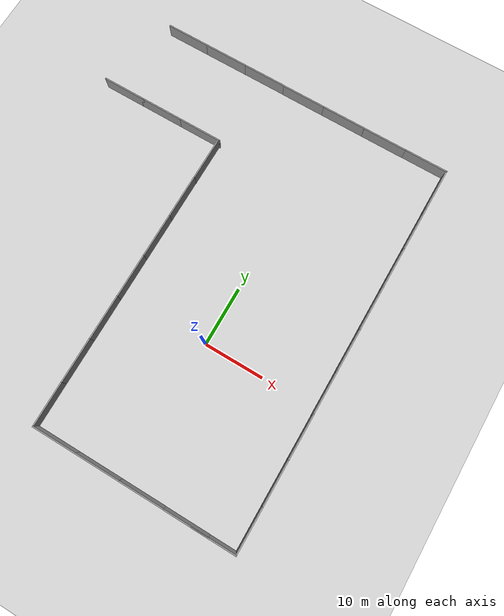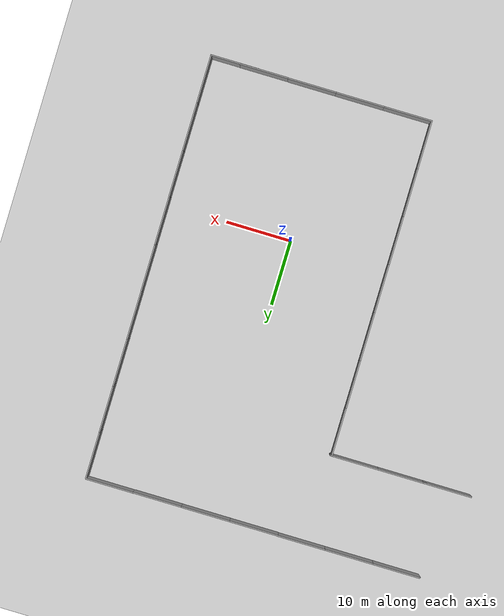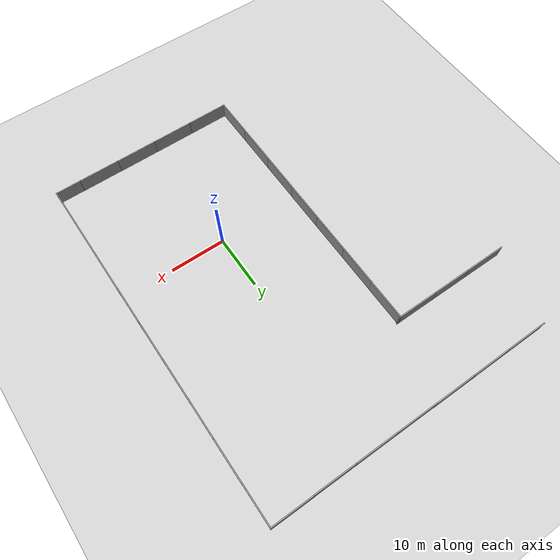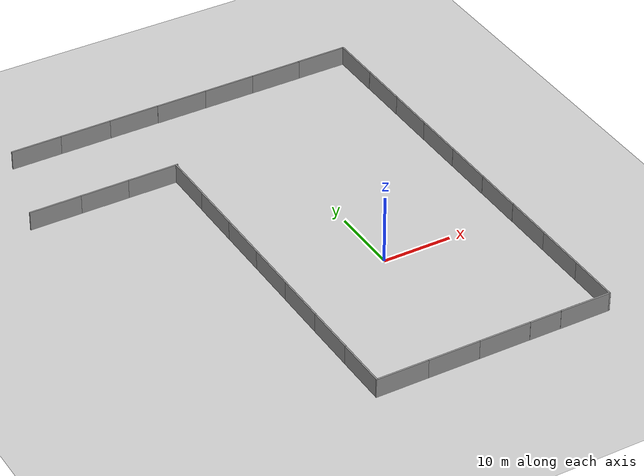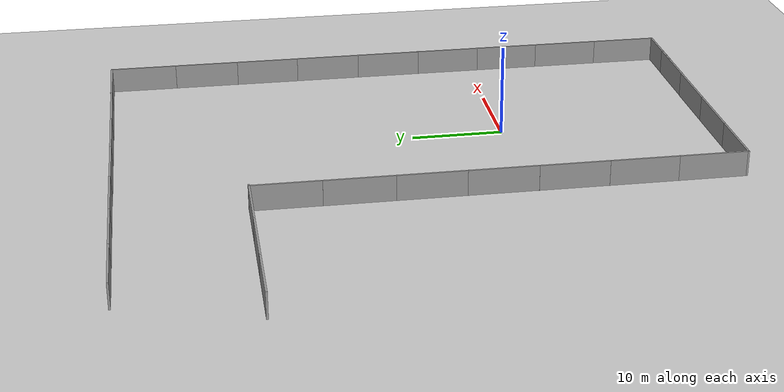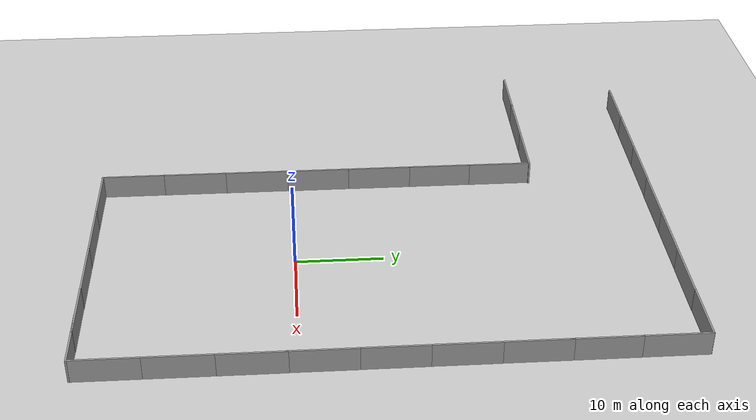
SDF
<sdf version="1.5">
 <world name="default">
  <light name="sun" type="directional">
   <pose>0 0 10 0 -0 0</pose>
   <diffuse>0.8 0.8 0.8 1</diffuse>
   <specular>0.2 0.2 0.2 1</specular>
   <attenuation>
    <range>1000</range>
    <constant>0.9</constant>
    <linear>0.01</linear>
    <quadratic>0.001</quadratic>
   </attenuation>
   <direction>0.5 0.1 -0.9</direction>
  </light>
  <model name="ground_plane">
   <static>1</static>
   <link name="link">
    <collision name="collision">
     <geometry><plane><normal>0 0 1</normal><size>100 100</size></plane></geometry>
     <surface><friction><ode><mu>100</mu><mu2>50</mu2></ode></friction></surface>
    </collision>
    <visual name="visual">
     <cast_shadows>0</cast_shadows>
     <geometry><plane><normal>0 0 1</normal><size>100 100</size></plane></geometry>
     <material>
      <script><uri>file://media/materials/scripts/gazebo.material</uri><name>Gazebo/Grey</name></script>
     </material>
    </visual>
    <velocity_decay><linear>0</linear><angular>0</angular></velocity_decay>
   </link>
  </model>
  <physics name="default_physics" default="0" type="ode">
   <max_step_size>0.001</max_step_size>
   <real_time_factor>1</real_time_factor>
   <real_time_update_rate>1000</real_time_update_rate>
   <gravity>0 0 -9.8</gravity>
   <magnetic_field>5.5645e-06 2.28758e-05 -4.23884e-05</magnetic_field>
  </physics>
  <scene>
   <ambient>0 0 0 1</ambient>
   <shadows>1</shadows>
   <grid>0</grid>
   <background>0.7 0.7 0.7 1</background>
  </scene>
  <spherical_coordinates>
   <surface_model>EARTH_WGS84</surface_model>
   <latitude_deg>0</latitude_deg>
   <longitude_deg>0</longitude_deg>
   <elevation>0</elevation>
   <heading_deg>0</heading_deg>
  </spherical_coordinates>
  <model name="grey_wall">
   <static>1</static>
   <link name="link">
    <pose>0 0 1.4 0 -0 0</pose>
    <collision name="collision"><geometry><box><size>7.5 0.2 2.8</size></box></geometry></collision>
    <visual name="visual">
     <cast_shadows>0</cast_shadows>
     <geometry><box><size>7.5 0.2 2.8</size></box></geometry>
     <material>
      <script>
       <uri>model://grey_wall/materials/scripts</uri>
       <uri>model://grey_wall/materials/textures</uri>
       <name>vrc/grey_wall</name>
      </script>
     </material>
    </visual>
   </link>
   <pose>10.9383 -23.0355 0 0 -0 0</pose>
  </model>
  <model name="grey_wall_clone">
   <static>1</static>
   <link name="link">
    <pose>0 0 1.4 0 -0 0</pose>
    <collision name="collision"><geometry><box><size>7.5 0.2 2.8</size></box></geometry></collision>
    <visual name="visual">
     <cast_shadows>0</cast_shadows>
     <geometry><box><size>7.5 0.2 2.8</size></box></geometry>
     <material>
      <script>
       <uri>model://grey_wall/materials/scripts</uri>
       <uri>model://grey_wall/materials/textures</uri>
       <name>vrc/grey_wall</name>
      </script>
     </material>
    </visual>
   </link>
   <pose>3.47515 -23.0089 0 0 -0 0</pose>
  </model>
  <model name="grey_wall_clone_0">
   <static>1</static>
   <link name="link">
    <pose>0 0 1.4 0 -0 0</pose>
    <collision name="collision"><geometry><box><size>7.5 0.2 2.8</size></box></geometry></collision>
    <visual name="visual">
     <cast_shadows>0</cast_shadows>
     <geometry><box><size>7.5 0.2 2.8</size></box></geometry>
     <material>
      <script>
       <uri>model://grey_wall/materials/scripts</uri>
       <uri>model://grey_wall/materials/textures</uri>
       <name>vrc/grey_wall</name>
      </script>
     </material>
    </visual>
   </link>
   <pose>-4 -23 0 0 -0 0</pose>
  </model>
  <model name="grey_wall_clone_1">
   <static>1</static>
   <link name="link">
    <pose>0 0 1.4 0 -0 0</pose>
    <collision name="collision"><geometry><box><size>7.5 0.2 2.8</size></box></geometry></collision>
    <visual name="visual">
     <cast_shadows>0</cast_shadows>
     <geometry><box><size>7.5 0.2 2.8</size></box></geometry>
     <material>
      <script>
       <uri>model://grey_wall/materials/scripts</uri>
       <uri>model://grey_wall/materials/textures</uri>
       <name>vrc/grey_wall</name>
      </script>
     </material>
    </visual>
   </link>
   <pose>-11.4641 -23 0 0 -0 0</pose>
  </model>
  <model name="grey_wall_clone_2">
   <static>1</static>
   <link name="link">
    <pose>0 0 1.4 0 -0 0</pose>
    <collision name="collision"><geometry><box><size>7.5 0.2 2.8</size></box></geometry></collision>
    <visual name="visual">
     <cast_shadows>0</cast_shadows>
     <geometry><box><size>7.5 0.2 2.8</size></box></geometry>
     <material>
      <script>
       <uri>model://grey_wall/materials/scripts</uri>
       <uri>model://grey_wall/materials/textures</uri>
       <name>vrc/grey_wall</name>
      </script>
     </material>
    </visual>
   </link>
   <pose>-15.1169 -19.3226 0 0 0 -1.57</pose>
  </model>
  <model name="grey_wall_clone_2_clone">
   <static>1</static>
   <link name="link">
    <pose>0 0 1.4 0 -0 0</pose>
    <collision name="collision"><geometry><box><size>7.5 0.2 2.8</size></box></geometry></collision>
    <visual name="visual">
     <cast_shadows>0</cast_shadows>
     <geometry><box><size>7.5 0.2 2.8</size></box></geometry>
     <material>
      <script>
       <uri>model://grey_wall/materials/scripts</uri>
       <uri>model://grey_wall/materials/textures</uri>
       <name>vrc/grey_wall</name>
      </script>
     </material>
    </visual>
   </link>
   <pose>-15.109 -11.9177 0 0 -0 1.57</pose>
  </model>
  <model name="grey_wall_clone_2_clone_0">
   <static>1</static>
   <link name="link">
    <pose>0 0 1.4 0 -0 0</pose>
    <collision name="collision"><geometry><box><size>7.5 0.2 2.8</size></box></geometry></collision>
    <visual name="visual">
     <cast_shadows>0</cast_shadows>
     <geometry><box><size>7.5 0.2 2.8</size></box></geometry>
     <material>
      <script>
       <uri>model://grey_wall/materials/scripts</uri>
       <uri>model://grey_wall/materials/textures</uri>
       <name>vrc/grey_wall</name>
      </script>
     </material>
    </visual>
   </link>
   <pose>-15.0927 -4.4464 0 0 -0 1.57</pose>
  </model>
  <model name="grey_wall_clone_2_clone_1">
   <static>1</static>
   <link name="link">
    <pose>0 0 1.4 0 -0 0</pose>
    <collision name="collision"><geometry><box><size>7.5 0.2 2.8</size></box></geometry></collision>
    <visual name="visual">
     <cast_shadows>0</cast_shadows>
     <geometry><box><size>7.5 0.2 2.8</size></box></geometry>
     <material>
      <script>
       <uri>model://grey_wall/materials/scripts</uri>
       <uri>model://grey_wall/materials/textures</uri>
       <name>vrc/grey_wall</name>
      </script>
     </material>
    </visual>
   </link>
   <pose>-15.0696 3.02866 0 0 -0 1.57</pose>
  </model>
  <model name="grey_wall_clone_2_clone_2">
   <static>1</static>
   <link name="link">
    <pose>0 0 1.4 0 -0 0</pose>
    <collision name="collision"><geometry><box><size>7.5 0.2 2.8</size></box></geometry></collision>
    <visual name="visual">
     <cast_shadows>0</cast_shadows>
     <geometry><box><size>7.5 0.2 2.8</size></box></geometry>
     <material>
      <script>
       <uri>model://grey_wall/materials/scripts</uri>
       <uri>model://grey_wall/materials/textures</uri>
       <name>vrc/grey_wall</name>
      </script>
     </material>
    </visual>
   </link>
   <pose>-15.0604 10.4694 0 0 -0 1.57</pose>
  </model>
  <model name="grey_wall_clone_2_clone_3">
   <static>1</static>
   <link name="link">
    <pose>0 0 1.4 0 -0 0</pose>
    <collision name="collision"><geometry><box><size>7.5 0.2 2.8</size></box></geometry></collision>
    <visual name="visual">
     <cast_shadows>0</cast_shadows>
     <geometry><box><size>7.5 0.2 2.8</size></box></geometry>
     <material>
      <script>
       <uri>model://grey_wall/materials/scripts</uri>
       <uri>model://grey_wall/materials/textures</uri>
       <name>vrc/grey_wall</name>
      </script>
     </material>
    </visual>
   </link>
   <pose>-15.0555 17.8885 0 0 -0 1.57</pose>
  </model>
  <model name="grey_wall_clone_2_clone_4">
   <static>1</static>
   <link name="link">
    <pose>0 0 1.4 0 -0 0</pose>
    <collision name="collision"><geometry><box><size>7.5 0.2 2.8</size></box></geometry></collision>
    <visual name="visual">
     <cast_shadows>0</cast_shadows>
     <geometry><box><size>7.5 0.2 2.8</size></box></geometry>
     <material>
      <script>
       <uri>model://grey_wall/materials/scripts</uri>
       <uri>model://grey_wall/materials/textures</uri>
       <name>vrc/grey_wall</name>
      </script>
     </material>
    </visual>
   </link>
   <pose>-15.0291 25.3509 0 0 -0 1.57</pose>
  </model>
  <model name="grey_wall_0">
   <static>1</static>
   <link name="link">
    <pose>0 0 1.4 0 -0 0</pose>
    <collision name="collision"><geometry><box><size>7.5 0.2 2.8</size></box></geometry></collision>
    <visual name="visual">
     <cast_shadows>0</cast_shadows>
     <geometry><box><size>7.5 0.2 2.8</size></box></geometry>
     <material>
      <script>
       <uri>model://grey_wall/materials/scripts</uri>
       <uri>model://grey_wall/materials/textures</uri>
       <name>vrc/grey_wall</name>
      </script>
     </material>
    </visual>
   </link>
   <pose>19.1679 -19.4083 0 0 -0 1.57</pose>
  </model>
  <model name="grey_wall_1">
   <static>1</static>
   <link name="link">
    <pose>0 0 1.4 0 -0 0</pose>
    <collision name="collision"><geometry><box><size>7.5 0.2 2.8</size></box></geometry></collision>
    <visual name="visual">
     <cast_shadows>0</cast_shadows>
     <geometry><box><size>7.5 0.2 2.8</size></box></geometry>
     <material>
      <script>
       <uri>model://grey_wall/materials/scripts</uri>
       <uri>model://grey_wall/materials/textures</uri>
       <name>vrc/grey_wall</name>
      </script>
     </material>
    </visual>
   </link>
   <pose>15.5303 -23.055 0 0 -0 0</pose>
  </model>
  <model name="grey_wall_0_clone">
   <static>1</static>
   <link name="link">
    <pose>0 0 1.4 0 -0 0</pose>
    <collision name="collision"><geometry><box><size>7.5 0.2 2.8</size></box></geometry></collision>
    <visual name="visual">
     <cast_shadows>0</cast_shadows>
     <geometry><box><size>7.5 0.2 2.8</size></box></geometry>
     <material>
      <script>
       <uri>model://grey_wall/materials/scripts</uri>
       <uri>model://grey_wall/materials/textures</uri>
       <name>vrc/grey_wall</name>
      </script>
     </material>
    </visual>
   </link>
   <pose>19.1723 -11.9797 0 0 -0 1.57</pose>
  </model>
  <model name="grey_wall_0_clone_0">
   <static>1</static>
   <link name="link">
    <pose>0 0 1.4 0 -0 0</pose>
    <collision name="collision"><geometry><box><size>7.5 0.2 2.8</size></box></geometry></collision>
    <visual name="visual">
     <cast_shadows>0</cast_shadows>
     <geometry><box><size>7.5 0.2 2.8</size></box></geometry>
     <material>
      <script>
       <uri>model://grey_wall/materials/scripts</uri>
       <uri>model://grey_wall/materials/textures</uri>
       <name>vrc/grey_wall</name>
      </script>
     </material>
    </visual>
   </link>
   <pose>19.176 -4.57768 0 0 -0 1.57</pose>
  </model>
  <model name="grey_wall_0_clone_1">
   <static>1</static>
   <link name="link">
    <pose>0 0 1.4 0 -0 0</pose>
    <collision name="collision"><geometry><box><size>7.5 0.2 2.8</size></box></geometry></collision>
    <visual name="visual">
     <cast_shadows>0</cast_shadows>
     <geometry><box><size>7.5 0.2 2.8</size></box></geometry>
     <material>
      <script>
       <uri>model://grey_wall/materials/scripts</uri>
       <uri>model://grey_wall/materials/textures</uri>
       <name>vrc/grey_wall</name>
      </script>
     </material>
    </visual>
   </link>
   <pose>19.1569 2.66623 0 0 -0 1.57</pose>
  </model>
  <model name="grey_wall_0_clone_2">
   <static>1</static>
   <link name="link">
    <pose>0 0 1.4 0 -0 0</pose>
    <collision name="collision"><geometry><box><size>7.5 0.2 2.8</size></box></geometry></collision>
    <visual name="visual">
     <cast_shadows>0</cast_shadows>
     <geometry><box><size>7.5 0.2 2.8</size></box></geometry>
     <material>
      <script>
       <uri>model://grey_wall/materials/scripts</uri>
       <uri>model://grey_wall/materials/textures</uri>
       <name>vrc/grey_wall</name>
      </script>
     </material>
    </visual>
   </link>
   <pose>19.145 9.93324 0 0 -0 1.57</pose>
  </model>
  <model name="grey_wall_0_clone_3">
   <static>1</static>
   <link name="link">
    <pose>0 0 1.4 0 -0 0</pose>
    <collision name="collision"><geometry><box><size>7.5 0.2 2.8</size></box></geometry></collision>
    <visual name="visual">
     <cast_shadows>0</cast_shadows>
     <geometry><box><size>7.5 0.2 2.8</size></box></geometry>
     <material>
      <script>
       <uri>model://grey_wall/materials/scripts</uri>
       <uri>model://grey_wall/materials/textures</uri>
       <name>vrc/grey_wall</name>
      </script>
     </material>
    </visual>
   </link>
   <pose>19.1332 17.2935 0 0 -0 1.57</pose>
  </model>
  <model name="grey_wall_0_clone_4">
   <static>1</static>
   <link name="link">
    <pose>0 0 1.4 0 -0 0</pose>
    <collision name="collision"><geometry><box><size>7.5 0.2 2.8</size></box></geometry></collision>
    <visual name="visual">
     <cast_shadows>0</cast_shadows>
     <geometry><box><size>7.5 0.2 2.8</size></box></geometry>
     <material>
      <script>
       <uri>model://grey_wall/materials/scripts</uri>
       <uri>model://grey_wall/materials/textures</uri>
       <name>vrc/grey_wall</name>
      </script>
     </material>
    </visual>
   </link>
   <pose>19.1258 24.6145 0 0 -0 1.57</pose>
  </model>
  <model name="grey_wall_0_clone_5">
   <static>1</static>
   <link name="link">
    <pose>0 0 1.4 0 -0 0</pose>
    <collision name="collision"><geometry><box><size>7.5 0.2 2.8</size></box></geometry></collision>
    <visual name="visual">
     <cast_shadows>0</cast_shadows>
     <geometry><box><size>7.5 0.2 2.8</size></box></geometry>
     <material>
      <script>
       <uri>model://grey_wall/materials/scripts</uri>
       <uri>model://grey_wall/materials/textures</uri>
       <name>vrc/grey_wall</name>
      </script>
     </material>
    </visual>
   </link>
   <pose>19.1287 31.7535 0 0 -0 1.57</pose>
  </model>
  <model name="grey_wall_0_clone_6">
   <static>1</static>
   <link name="link">
    <pose>0 0 1.4 0 -0 0</pose>
    <collision name="collision"><geometry><box><size>7.5 0.2 2.8</size></box></geometry></collision>
    <visual name="visual">
     <cast_shadows>0</cast_shadows>
     <geometry><box><size>7.5 0.2 2.8</size></box></geometry>
     <material>
      <script>
       <uri>model://grey_wall/materials/scripts</uri>
       <uri>model://grey_wall/materials/textures</uri>
       <name>vrc/grey_wall</name>
      </script>
     </material>
    </visual>
   </link>
   <pose>19.118 39.0094 0 0 -0 1.57</pose>
  </model>
  <model name="grey_wall_2">
   <static>1</static>
   <link name="link">
    <pose>0 0 1.4 0 -0 0</pose>
    <collision name="collision"><geometry><box><size>7.5 0.2 2.8</size></box></geometry></collision>
    <visual name="visual">
     <cast_shadows>0</cast_shadows>
     <geometry><box><size>7.5 0.2 2.8</size></box></geometry>
     <material>
      <script>
       <uri>model://grey_wall/materials/scripts</uri>
       <uri>model://grey_wall/materials/textures</uri>
       <name>vrc/grey_wall</name>
      </script>
     </material>
    </visual>
   </link>
   <pose>15.4645 42.7006 0 0 -0 0</pose>
  </model>
  <model name="grey_wall_2_clone">
   <static>1</static>
   <link name="link">
    <pose>0 0 1.4 0 -0 0</pose>
    <collision name="collision"><geometry><box><size>7.5 0.2 2.8</size></box></geometry></collision>
    <visual name="visual">
     <cast_shadows>0</cast_shadows>
     <geometry><box><size>7.5 0.2 2.8</size></box></geometry>
     <material>
      <script>
       <uri>model://grey_wall/materials/scripts</uri>
       <uri>model://grey_wall/materials/textures</uri>
       <name>vrc/grey_wall</name>
      </script>
     </material>
    </visual>
   </link>
   <pose>8.07327 42.6771 0 0 -0 0</pose>
  </model>
  <model name="grey_wall_2_clone_0">
   <static>1</static>
   <link name="link">
    <pose>0 0 1.4 0 -0 0</pose>
    <collision name="collision"><geometry><box><size>7.5 0.2 2.8</size></box></geometry></collision>
    <visual name="visual">
     <cast_shadows>0</cast_shadows>
     <geometry><box><size>7.5 0.2 2.8</size></box></geometry>
     <material>
      <script>
       <uri>model://grey_wall/materials/scripts</uri>
       <uri>model://grey_wall/materials/textures</uri>
       <name>vrc/grey_wall</name>
      </script>
     </material>
    </visual>
   </link>
   <pose>0.560982 42.6873 0 0 -0 0</pose>
  </model>
  <model name="grey_wall_2_clone_1">
   <static>1</static>
   <link name="link">
    <pose>0 0 1.4 0 -0 0</pose>
    <collision name="collision"><geometry><box><size>7.5 0.2 2.8</size></box></geometry></collision>
    <visual name="visual">
     <cast_shadows>0</cast_shadows>
     <geometry><box><size>7.5 0.2 2.8</size></box></geometry>
     <material>
      <script>
       <uri>model://grey_wall/materials/scripts</uri>
       <uri>model://grey_wall/materials/textures</uri>
       <name>vrc/grey_wall</name>
      </script>
     </material>
    </visual>
   </link>
   <pose>-6.93593 42.693 0 0 -0 0</pose>
  </model>
  <model name="grey_wall_2_clone_2">
   <static>1</static>
   <link name="link">
    <pose>0 0 1.4 0 -0 0</pose>
    <collision name="collision"><geometry><box><size>7.5 0.2 2.8</size></box></geometry></collision>
    <visual name="visual">
     <cast_shadows>0</cast_shadows>
     <geometry><box><size>7.5 0.2 2.8</size></box></geometry>
     <material>
      <script>
       <uri>model://grey_wall/materials/scripts</uri>
       <uri>model://grey_wall/materials/textures</uri>
       <name>vrc/grey_wall</name>
      </script>
     </material>
    </visual>
   </link>
   <pose>-14.3307 42.7229 0 0 -0 0</pose>
  </model>
  <model name="grey_wall_2_clone_3">
   <static>1</static>
   <link name="link">
    <pose>0 0 1.4 0 -0 0</pose>
    <collision name="collision"><geometry><box><size>7.5 0.2 2.8</size></box></geometry></collision>
    <visual name="visual">
     <cast_shadows>0</cast_shadows>
     <geometry><box><size>7.5 0.2 2.8</size></box></geometry>
     <material>
      <script>
       <uri>model://grey_wall/materials/scripts</uri>
       <uri>model://grey_wall/materials/textures</uri>
       <name>vrc/grey_wall</name>
      </script>
     </material>
    </visual>
   </link>
   <pose>-18.5025 29 0 0 -0 0</pose>
  </model>
  <model name="grey_wall_2_clone_4">
   <static>1</static>
   <link name="link">
    <pose>0 0 1.4 0 -0 0</pose>
    <collision name="collision"><geometry><box><size>7.5 0.2 2.8</size></box></geometry></collision>
    <visual name="visual">
     <cast_shadows>0</cast_shadows>
     <geometry><box><size>7.5 0.2 2.8</size></box></geometry>
     <material>
      <script>
       <uri>model://grey_wall/materials/scripts</uri>
       <uri>model://grey_wall/materials/textures</uri>
       <name>vrc/grey_wall</name>
      </script>
     </material>
    </visual>
   </link>
   <pose>-26 29 0 0 -0 0</pose>
  </model>
  <model name="grey_wall_2_clone_5">
   <static>1</static>
   <link name="link">
    <pose>0 0 1.4 0 -0 0</pose>
    <collision name="collision"><geometry><box><size>7.5 0.2 2.8</size></box></geometry></collision>
    <visual name="visual">
     <cast_shadows>0</cast_shadows>
     <geometry><box><size>7.5 0.2 2.8</size></box></geometry>
     <material>
      <script>
       <uri>model://grey_wall/materials/scripts</uri>
       <uri>model://grey_wall/materials/textures</uri>
       <name>vrc/grey_wall</name>
      </script>
     </material>
    </visual>
   </link>
   <pose>-21.7522 42.7205 0 0 -0 0</pose>
  </model>
  <model name="grey_wall_2_clone_6">
   <static>1</static>
   <link name="link">
    <pose>0 0 1.4 0 -0 0</pose>
    <collision name="collision"><geometry><box><size>7.5 0.2 2.8</size></box></geometry></collision>
    <visual name="visual">
     <cast_shadows>0</cast_shadows>
     <geometry><box><size>7.5 0.2 2.8</size></box></geometry>
     <material>
      <script>
       <uri>model://grey_wall/materials/scripts</uri>
       <uri>model://grey_wall/materials/textures</uri>
       <name>vrc/grey_wall</name>
      </script>
     </material>
    </visual>
   </link>
   <pose>-29.0984 42.7225 0 0 -0 0</pose>
  </model>
  <model name="grey_wall_2_clone_7">
   <static>1</static>
   <link name="link">
    <pose>0 0 1.4 0 -0 0</pose>
    <collision name="collision"><geometry><box><size>7.5 0.2 2.8</size></box></geometry></collision>
    <visual name="visual">
     <cast_shadows>0</cast_shadows>
     <geometry><box><size>7.5 0.2 2.8</size></box></geometry>
     <material>
      <script>
       <uri>model://grey_wall/materials/scripts</uri>
       <uri>model://grey_wall/materials/textures</uri>
       <name>vrc/grey_wall</name>
      </script>
     </material>
    </visual>
   </link>
   <pose>-33 29 0 0 -0 0</pose>
  </model>
 </world>
</sdf>
